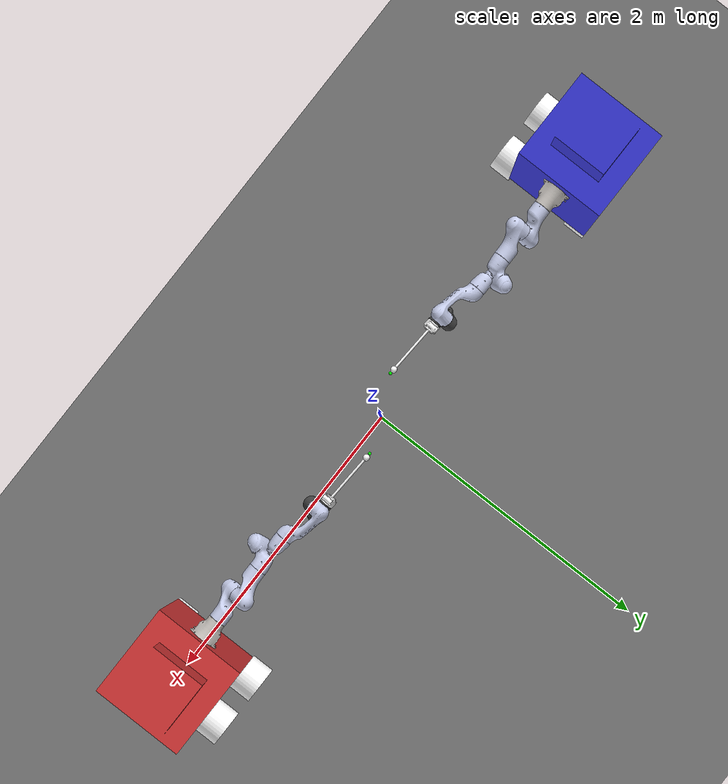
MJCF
<mujoco model="Fencing_arm_description3.0">
  <compiler angle="radian" inertiafromgeom="true"/>

  <option timestep="0.002" integrator="RK4" gravity="0 0 -9.81"/>

  <visual>
    <headlight diffuse="1 1 1" active="1"/>
  </visual>

  <asset>
    <mesh name="base_link" file="meshes/base_link.STL"/>
    <mesh name="link0" file="meshes/link0.STL"/>
    <mesh name="link1" file="meshes/link1.STL"/>
    <mesh name="link2" file="meshes/link2.STL"/>
    <mesh name="link3" file="meshes/link3.STL"/>
    <mesh name="link4" file="meshes/link4.STL"/>
    <mesh name="link5" file="meshes/link5.STL"/>
    <mesh name="link6" file="meshes/link6.STL"/>
    <mesh name="link7" file="meshes/link7.STL"/>
    <mesh name="link01" file="meshes/link01.STL"/>
    <mesh name="link02" file="meshes/link02.STL"/>
    <mesh name="link03" file="meshes/link03.STL"/>
    <mesh name="link04" file="meshes/link04.STL"/>
<texture name="grid" type="2d" builtin="checker" rgb1="0.1 0.1 0.1" rgb2="0.8 0.8 0.8" width="300" height="300"/>
    <material name="grid" texture="grid" texrepeat="2 2" reflectance="0.2"/>
    </asset>

    <!-- Default parameters / 默认参数设置 -->
  <default>
    <joint limited="false" damping="1" armature="0.1" frictionloss="0.1"/>
    <geom contype="1" conaffinity="1" friction="2 0.5 0.001"/>
    <motor ctrlrange="-1 1" ctrllimited="true"/>
  </default>

  <worldbody>
    <geom name="ground" type="plane" size="0 0 0.1" pos="0 0 -0.2" material="grid" friction = "1 0.05 0.001"/>
    <light directional="true" pos="0 0 3" dir="0 0 -1"/>

    <!-- Agent robot body / 机器人代理本体 -->

    <body name="base_link_agent" pos="2 0 0.1">
    <!-- slide改为x轴，limited range -5 5是相对于其初始pos的，需调整 -->
      <joint name="slide_x_agent" type="slide" axis="1 0 0" range="-3 3" limited="true" damping="500"/>
      <inertial mass="477.18" pos="0 0 0.69005" diaginertia="50.0 50.0 30.0"/>
      <geom type="mesh" contype="17" conaffinity="24" group="1" density="0" rgba="0.8 0.2 0.2 1" mesh="base_link"/>
      <geom type="mesh" rgba="0.8 0.2 0.2 1" mesh="base_link"/>
      <!-- Body site for base reference / 基座参考用的 site -->
      <site name="key_site_agent" pos="0 0 0" size="0.01" rgba="0 1 0 1" type="sphere"/>

      <!-- Add full body definition for link0 / 为 link0 添加完整 body 定义 -->
      <body name="link0_agent" pos="-0.3 0 1" quat="0.495629 -0.504331 0.504333 -0.495631">
        <geom type="mesh" contype="18" conaffinity="24" group="1" density="0" rgba="0.76863 0.74902 0.72941 1" mesh="link0"/>
        <geom type="mesh" rgba="0.768627 0.74902 0.729412 1" mesh="link0"/>

        <!-- link1 is child of link0; links 1–7 follow Franka Panda / link1作为link0的子体；link1～7取自 Franka Panda -->
        <body name="link1_agent" pos="0 0 0" quat="1 0 0 0">
          <inertial pos="0.0119457 0.010524 -0.237182" quat="-0.606188 0.213073 0.674449 0.363668" mass="0.807638" diaginertia="0.001581 0.006519 0.006672"/>
          <joint name="joint1_agent" pos="0 0 0" axis="0 0 1" range="-3.14 3.14" limited="true" damping="8"/>
          <geom type="mesh" contype="18" conaffinity="24" rgba="0.792157 0.819608 0.933333 1" mesh="link1"/>

          <body name="link2_agent" pos="0.095985 0.084721 -0.33006" quat="0.696965 -0.550676 0.443573 -0.119323">
            <inertial pos="0.0401727 0.0721568 -0.146432" quat="0.571137 0.641765 0.289696 0.421919" mass="0.997394" diaginertia="0.001746 0.008257 0.008302"/>
            <joint name="joint2_agent" pos="0 0 0" axis="0 0 1" range="-2.0 2.0" limited="true" damping="8"/>
            <geom type="mesh" contype="18" conaffinity="24" rgba="0.792157 0.819608 0.933333 1" mesh="link2"/>
            <body name="link3_agent" pos="0.14623 0.26169 -0.12803" quat="0.601287 -0.343558 0.618036 0.372093">
              <inertial pos="-0.0384723 -0.0165653 -0.0312365" quat="0.903155 0.073969 0.412860 0.091578" mass="0.695462" diaginertia="0.001116 0.003690 0.003709"/>
              <joint name="joint3_agent" pos="0 0 0" axis="0 0 -1" range="-2.5 2.5" limited="true" damping="6"/>
              <geom type="mesh" contype="18" conaffinity="24" rgba="0.792157 0.819608 0.933333 1" mesh="link3"/>
              <body name="link4_agent" pos="-0.0825 0.10162 0.019058" quat="-0.40676 0.406755 -0.578404 -0.578399">
                <inertial pos="-0.0546266 -0.0258059 -0.083502" quat="0.971082 0.027741 -0.105972 0.212132" mass="0.788121" diaginertia="0.001208 0.004290 0.004318"/>
                <joint name="joint4_agent" pos="0 0 0" axis="0 0 -1" range="-2.0 2.0" limited="true" damping="6"/>
                <geom type="mesh" contype="18" conaffinity="24" rgba="0.792157 0.819608 0.933333 1" mesh="link4"/>
                <body name="link5_agent" pos="-0.043804 -0.073358 -0.10152" quat="0.126867 0.703939 -0.0668617 0.695632">
                  <inertial pos="-0.00622206 0.0645374 -0.263644" quat="0.703851 0.135681 -0.693583 -0.071608" mass="0.304109" diaginertia="0.000430 0.002743 0.002969"/>
                  <joint name="joint5_agent" pos="0 0 0" axis="0 0 1" range="-2.8 2.8" limited="true" damping="4"/>
                  <geom type="mesh" contype="18" conaffinity="24" rgba="0.792157 0.819608 0.933333 1" mesh="link5"/>
                  <body name="link6_agent" pos="-0.011814 0.12606 -0.34311" quat="0.0330072 0.0330074 -0.706337 -0.706335">
                    <inertial pos="-0.064034 -0.00953132 -0.135025" quat="0.998633 0.010357 0.019789 0.047264" mass="0.230988" diaginertia="0.000236 0.000413 0.000524"/>
                    <joint name="joint6_agent" pos="0 0 0" axis="0 0 1" range="-3.14 3.14" limited="true" damping="2"/>
                    <geom type="mesh" contype="18" conaffinity="24" rgba="0.25098 0.25098 0.25098 1" mesh="link6"/>
                    <body name="link7_agent" pos="-0.087521 -0.11808 -0.12661" quat="0.034765 0.0313796 0.706411 -0.70625">
                      <inertial pos="-0.00611647 -0.00297294 0.0528661" quat="-0.389105 0.596933 -0.379503 -0.590123" mass="0.277615" diaginertia="0.000252 0.001165 0.001195"/>
                      <joint name="joint7_agent" pos="0 0 0" axis="0 0 1" range="-2.96 2.96" limited="true" damping="2"/>
                      <geom type="mesh" contype="18" conaffinity="24" rgba="1 1 1 1" mesh="link7"/>

                      <body name="tip8_agent" pos="0 0 0.35">
                        <!-- Sword tip body; site for world pose queries / 剑尖 body；site 用于查询世界坐标 (data.site_xpos) -->
                          <geom name="tip8_geom_agent" contype="4" conaffinity="3" type="sphere" size="0.005" pos="0 0 0" rgba="0 1 0 1"/>
                          <site name="tip8_agent" pos="0 0 0" size="0.01" rgba="0 1 0 1"/>
                      </body>
                    </body>
                  </body>
                </body>
              </body>
            </body>
          </body>
        </body>
      </body>

      <!-- Wheel joints also need damping / 轮子关节也需要阻尼 -->
      <body name="link01_agent" pos="0.175 -0.3 -0.125" quat="0.499998 0.5 0.5 -0.500002">
        <inertial pos="0 0 -0.075" quat="1.000000 -0.000000 0.000000 0.000000" mass="7.36311" diaginertia="0.042568 0.042568 0.057524"/>
        <joint name="joint01_agent" pos="0 0 0" axis="0 0 -1" limited="false" damping="0.5"/>
        <geom type="mesh" rgba="1 1 1 1" mesh="link01"/>
      </body>
      <body name="link02_agent" pos="0.175 0.3 -0.125" quat="0.499998 0.5 0.5 -0.500002">
        <inertial pos="0 0 -0.075" quat="1.000000 -0.000000 0.000000 0.000000" mass="7.36311" diaginertia="0.042568 0.042568 0.057524"/>
        <joint name="joint02_agent" pos="0 0 0" axis="0 0 -1" limited="false" damping="0.5"/>
        <geom type="mesh" rgba="1 1 1 1" mesh="link02"/>
      </body>
      <body name="link03_agent" pos="-0.175 0.3 -0.125" quat="0.499998 0.5 0.5 -0.500002">
        <inertial pos="0 0 -0.075" quat="1.000000 -0.000000 0.000000 0.000000" mass="7.36311" diaginertia="0.042568 0.042568 0.057524"/>
        <joint name="joint03_agent" pos="0 0 0" axis="0 0 1" limited="false" damping="0.5"/>
        <geom type="mesh" rgba="1 1 1 1" mesh="link03"/>
      </body>
      <body name="link04_agent" pos="-0.175 -0.15 -0.125" quat="0.499998 0.5 0.5 -0.500002">
        <inertial pos="0 0 0.075" quat="1.000000 -0.000000 0.000000 0.000000" mass="7.36311" diaginertia="0.042568 0.042568 0.057524"/>
        <joint name="joint04_agent" pos="0 0 0" axis="0 0 1" limited="false" damping="0.5"/>
        <geom type="mesh" rgba="1 1 1 1" mesh="link04"/>
      </body>
    </body>

    <!-- obstacle robot body / 机器人障碍本体 -->

    <body name="base_link_obstacle" pos="-2 0 0.1" quat="0 0 0 1">
    <!-- slide改为x轴 -->
      <joint name="slide_x_obstacle" type="slide" axis="1 0 0" range="-0.2 0.2" limited="true" damping="500"/>
      <inertial mass="477.18" pos="0 0 0.69005" diaginertia="50.0 50.0 30.0"/>
      <geom type="mesh" contype="17" conaffinity="20" group="1" density="0" rgba="0.2 0.2 0.8 1" mesh="base_link"/>
      <geom type="mesh" rgba="0.2 0.2 0.8 1" mesh="base_link"/>
      <!-- Body site for base reference / 基座参考用的 site -->
      <site name="key_site_obstacle" pos="0 0 0" size="0.01" rgba="0 1 0 1" type="sphere"/>

      <!-- Add full body definition for link0 / 为 link0 添加完整 body 定义 -->
      <body name="link0_obstacle" pos="-0.3 0 1" quat="0.495629 -0.504331 0.504333 -0.495631">
        <geom type="mesh" contype="18" conaffinity="20" group="1" density="0" rgba="0.76863 0.74902 0.72941 1" mesh="link0"/>
        <geom type="mesh" rgba="0.768627 0.74902 0.729412 1" mesh="link0"/>

        <!-- link1 is child of link0; links 1–7 follow Franka Panda / link1作为link0的子体；link1～7取自 Franka Panda -->
        <body name="link1_obstacle" pos="0 0 0" quat="1 0 0 0">
          <inertial pos="0.0119457 0.010524 -0.237182" quat="-0.606188 0.213073 0.674449 0.363668" mass="0.807638" diaginertia="0.001581 0.006519 0.006672"/>
          <joint name="joint1_obstacle" pos="0 0 0" axis="0 0 1" range="-3.14 3.14" limited="true" damping="8"/>
          <geom type="mesh" contype="18" conaffinity="20" rgba="0.792157 0.819608 0.933333 1" mesh="link1"/>

          <body name="link2_obstacle" pos="0.095985 0.084721 -0.33006" quat="0.696965 -0.550676 0.443573 -0.119323">
            <inertial pos="0.0401727 0.0721568 -0.146432" quat="0.571137 0.641765 0.289696 0.421919" mass="0.997394" diaginertia="0.001746 0.008257 0.008302"/>
            <joint name="joint2_obstacle" pos="0 0 0" axis="0 0 1" range="-2.0 2.0" limited="true" damping="8"/>
            <geom type="mesh" contype="18" conaffinity="20" rgba="0.792157 0.819608 0.933333 1" mesh="link2"/>

            <body name="link3_obstacle" pos="0.14623 0.26169 -0.12803" quat="0.601287 -0.343558 0.618036 0.372093">

              <inertial pos="-0.0384723 -0.0165653 -0.0312365" quat="0.903155 0.073969 0.412860 0.091578" mass="0.695462" diaginertia="0.001116 0.003690 0.003709"/>
              <joint name="joint3_obstacle" pos="0 0 0" axis="0 0 -1" range="-2.5 2.5" limited="true" damping="6"/>
              <geom type="mesh" contype="18" conaffinity="20" rgba="0.792157 0.819608 0.933333 1" mesh="link3"/>
              <body name="link4_obstacle" pos="-0.0825 0.10162 0.019058" quat="-0.40676 0.406755 -0.578404 -0.578399">

                <inertial pos="-0.0546266 -0.0258059 -0.083502" quat="0.971082 0.027741 -0.105972 0.212132" mass="0.788121" diaginertia="0.001208 0.004290 0.004318"/>
                <joint name="joint4_obstacle" pos="0 0 0" axis="0 0 -1" range="-2.0 2.0" limited="true" damping="6"/>
                <geom type="mesh" contype="18" conaffinity="20" rgba="0.792157 0.819608 0.933333 1" mesh="link4"/>
                <body name="link5_obstacle" pos="-0.043804 -0.073358 -0.10152" quat="0.126867 0.703939 -0.0668617 0.695632">

                  <inertial pos="-0.00622206 0.0645374 -0.263644" quat="0.703851 0.135681 -0.693583 -0.071608" mass="0.304109" diaginertia="0.000430 0.002743 0.002969"/>
                  <joint name="joint5_obstacle" pos="0 0 0" axis="0 0 1" range="-2.8 2.8" limited="true" damping="4"/>
                  <geom type="mesh" contype="18" conaffinity="20" rgba="0.792157 0.819608 0.933333 1" mesh="link5"/>
                  <body name="link6_obstacle" pos="-0.011814 0.12606 -0.34311" quat="0.0330072 0.0330074 -0.706337 -0.706335">

                    <inertial pos="-0.064034 -0.00953132 -0.135025" quat="0.998633 0.010357 0.019789 0.047264" mass="0.230988" diaginertia="0.000236 0.000413 0.000524"/>
                    <joint name="joint6_obstacle" pos="0 0 0" axis="0 0 1" range="-3.14 3.14" limited="true" damping="2"/>
                    <geom type="mesh" contype="18" conaffinity="20" rgba="0.25098 0.25098 0.25098 1" mesh="link6"/>
                    <body name="link7_obstacle" pos="-0.087521 -0.11808 -0.12661" quat="0.034765 0.0313796 0.706411 -0.70625">
                      <inertial pos="-0.00611647 -0.00297294 0.0528661" quat="-0.389105 0.596933 -0.379503 -0.590123" mass="0.277615" diaginertia="0.000252 0.001165 0.001195"/>
                      <joint name="joint7_obstacle" pos="0 0 0" axis="0 0 1" range="-2.96 2.96" limited="true" damping="2"/>
                      <geom type="mesh" contype="18" conaffinity="20" rgba="1 1 1 1" mesh="link7"/>

                      <body name="tip8_obstacle" pos="0 0 0.35">
                        <!-- Sword tip body; site for world pose queries / 剑尖 body；site 用于查询世界坐标 (data.site_xpos) -->
                          <geom name="tip8_geom_obstacle" contype="8" conaffinity="3" type="sphere" size="0.005" pos="0 0 0" rgba="0 1 0 1"/>
                          <site name="tip8_obstacle" pos="0 0 0" size="0.01" rgba="0 1 0 1"/>
                      </body>
                    </body>
                  </body>
                </body>
              </body>
            </body>
          </body>
        </body>
      </body>

      <!-- Wheel joints also need damping / 轮子关节也需要阻尼 -->
      <!-- 四个轮子inertial quat="1.000000 -0.000000 0.000000 0.000000" mass="..." diaginertia="0.042568 0.042568 0.057524" -->

      <body name="link01_obstacle" pos="0.175 -0.3 -0.125" quat="0.499998 0.5 0.5 -0.500002">
        <inertial pos="0 0 -0.075" quat="1.000000 -0.000000 0.000000 0.000000" mass="7.36311" diaginertia="0.042568 0.042568 0.057524"/>
        <joint name="joint01_obstacle" pos="0 0 0" axis="0 0 -1" limited="false" damping="0.5"/>
        <geom type="mesh" rgba="1 1 1 1" mesh="link01"/>
      </body>
      <body name="link02_obstacle" pos="0.175 0.3 -0.125" quat="0.499998 0.5 0.5 -0.500002">
        <inertial pos="0 0 -0.075" quat="1.000000 -0.000000 0.000000 0.000000" mass="7.36311" diaginertia="0.042568 0.042568 0.057524"/>
        <joint name="joint02_obstacle" pos="0 0 0" axis="0 0 -1" limited="false" damping="0.5"/>
        <geom type="mesh" rgba="1 1 1 1" mesh="link02"/>
      </body>
      <body name="link03_obstacle" pos="-0.175 0.3 -0.125" quat="0.499998 0.5 0.5 -0.500002">
        <inertial pos="0 0 -0.075" quat="1.000000 -0.000000 0.000000 0.000000" mass="7.36311" diaginertia="0.042568 0.042568 0.057524"/>
        <joint name="joint03_obstacle" pos="0 0 0" axis="0 0 1" limited="false" damping="0.5"/>
        <geom type="mesh" rgba="1 1 1 1" mesh="link03"/>
      </body>
      <body name="link04_obstacle" pos="-0.175 -0.15 -0.125" quat="0.499998 0.5 0.5 -0.500002">
        <inertial pos="0 0 0.075" quat="1.000000 -0.000000 0.000000 0.000000" mass="7.36311" diaginertia="0.042568 0.042568 0.057524"/>
        <joint name="joint04_obstacle" pos="0 0 0" axis="0 0 1" limited="false" damping="0.5"/>
        <geom type="mesh" rgba="1 1 1 1" mesh="link04"/>
      </body>
    </body>

  </worldbody>
  <sensor>
  <!-- Agent joint positions (8D: 7 joints + 1 slider)
  / 代理关节角度 (8 维：7 关节 + 1 滑台) -->
  <jointpos name="s_j1_agent" joint="joint1_agent"/>
  <jointpos name="s_j2_agent" joint="joint2_agent"/>
  <jointpos name="s_j3_agent" joint="joint3_agent"/>
  <jointpos name="s_j4_agent" joint="joint4_agent"/>
  <jointpos name="s_j5_agent" joint="joint5_agent"/>
  <jointpos name="s_j6_agent" joint="joint6_agent"/>
  <jointpos name="s_j7_agent" joint="joint7_agent"/>
  <jointpos name="s_slider_agent" joint="slide_x_agent"/>

  <!-- Agent end-effector position (3D) / 代理末端执行器位置 (3 维) -->
  <framepos name="s_ee_pos_agent" objtype="site" objname="tip8_agent"/>

  <!-- Agent base position (via site, adjustable) (3D)
  / 代理基座位置（通过 site，可调）(3 维) -->
  <framepos name="s_base_pos_agent" objtype="site" objname="key_site_agent"/>

  <!-- Obstacle joint positions (7D) / 障碍臂关节角度 (7 维) -->
  <jointpos name="s_j1_obs" joint="joint1_obstacle"/>
  <jointpos name="s_j2_obs" joint="joint2_obstacle"/>
  <jointpos name="s_j3_obs" joint="joint3_obstacle"/>
  <jointpos name="s_j4_obs" joint="joint4_obstacle"/>
  <jointpos name="s_j5_obs" joint="joint5_obstacle"/>
  <jointpos name="s_j6_obs" joint="joint6_obstacle"/>
  <jointpos name="s_j7_obs" joint="joint7_obstacle"/>
  <jointpos name="s_slider_obs" joint="slide_x_obstacle"/>

  <!-- Obstacle end-effector position (3D) / 障碍臂末端执行器位置 (3 维) -->
  <framepos name="s_ee_pos_obs" objtype="site" objname="tip8_obstacle"/>

  <!-- Obstacle base position (via site, adjustable) (3D)
  / 障碍臂基座位置（通过 site，可调）(3 维) -->
  <framepos name="s_base_pos_obs" objtype="site" objname="key_site_obstacle"/>

  <!-- Collision detection handled in Python via sim.data.contact using contype/conaffinity
  / 碰撞检测在 Python 侧通过 sim.data.contact + contype/conaffinity 处理 -->

</sensor>

<actuator>
    <!-- Actions vs torque motors: use PD/IK in Python to map position-like actions to torques (software servo)
    / 动作与力矩电机：在 Python 用 PD/IK 将位置式动作映射为力矩（软件伺服） -->
    <motor name="slider_agent" joint="slide_x_agent" gear="500"/>
    <motor name="m1_agent" joint="joint1_agent" gear="100"/>
    <motor name="m2_agent" joint="joint2_agent" gear="100"/>
    <motor name="m3_agent" joint="joint3_agent" gear="100"/>
    <motor name="m4_agent" joint="joint4_agent" gear="100"/>
    <motor name="m5_agent" joint="joint5_agent" gear="100"/>
    <motor name="m6_agent" joint="joint6_agent" gear="100"/>
    <motor name="m7_agent" joint="joint7_agent" gear="100"/>

    <motor name="slider_obstacle" joint="slide_x_obstacle" gear="500"/>
    <motor name="m1_obs" joint="joint1_obstacle" gear="100"/>
    <motor name="m2_obs" joint="joint2_obstacle" gear="100"/>
    <motor name="m3_obs" joint="joint3_obstacle" gear="100"/>
    <motor name="m4_obs" joint="joint4_obstacle" gear="100"/>
    <motor name="m5_obs" joint="joint5_obstacle" gear="100"/>
    <motor name="m6_obs" joint="joint6_obstacle" gear="100"/>
    <motor name="m7_obs" joint="joint7_obstacle" gear="100"/>
  </actuator>

</mujoco>
